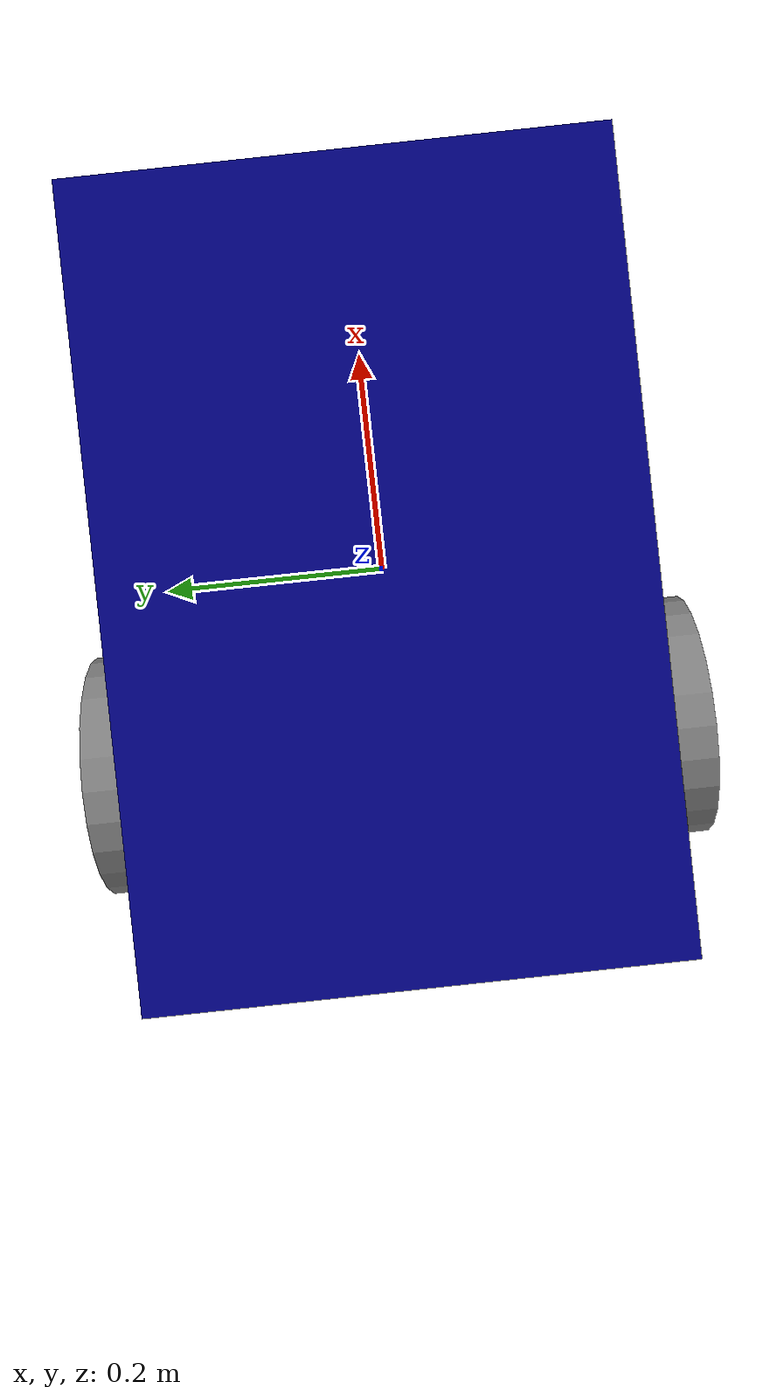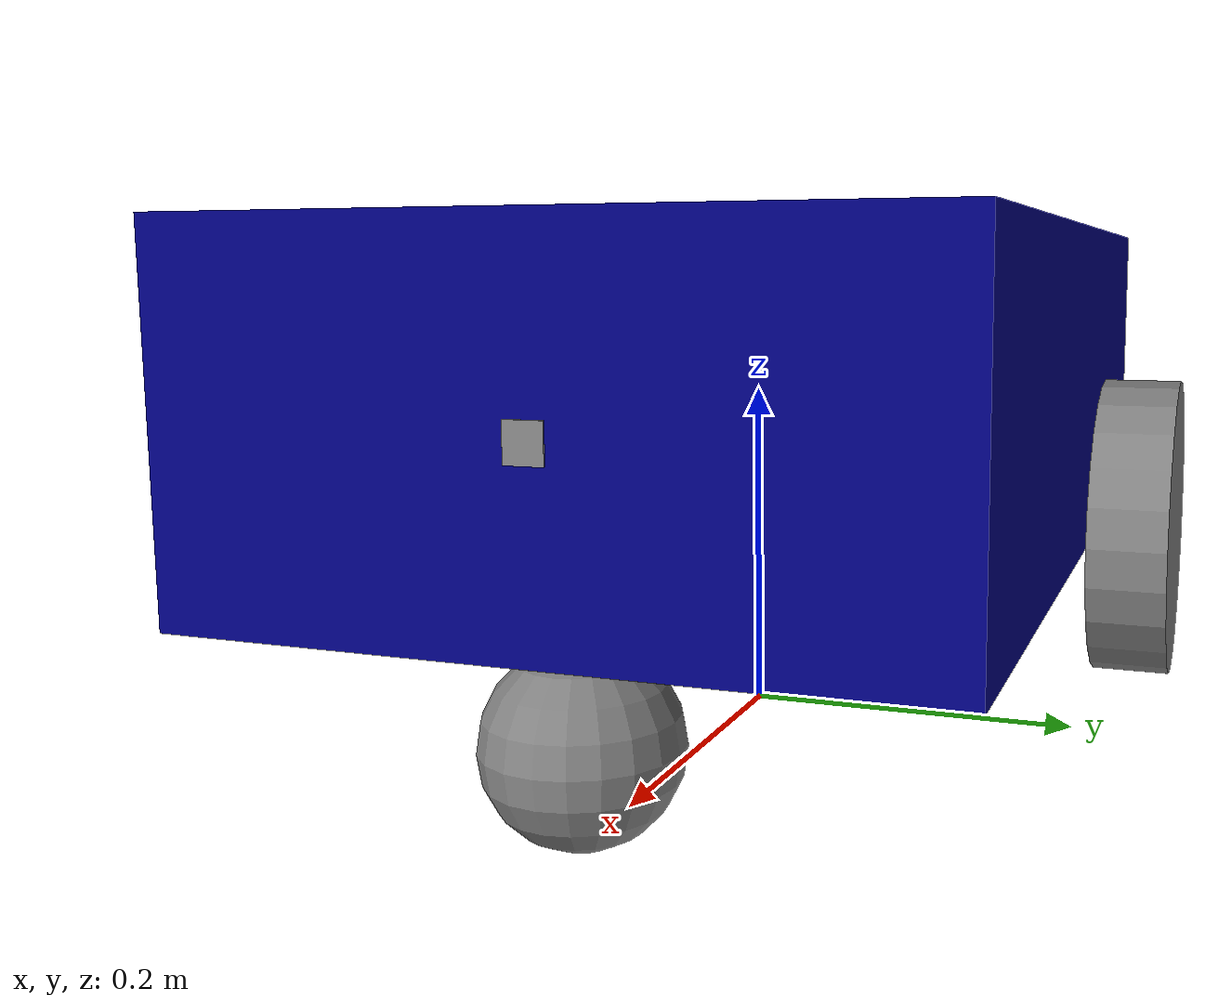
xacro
<?xml version="1.0"?>
<robot xmlns:xacro="http://www.ros.org/wiki/xacro">

    <xacro:property name="wheel_radius" value="0.1" />
    <xacro:property name="wheel_length" value="0.05"/>

    <xacro:macro name="tof_sensor" params="sensor_id">
        <link name="tof_sensor_${sensor_id}_link">
            <visual>
                <geometry>
                    <box size="0.002 0.02 0.02" />
                </geometry>
                <origin xyz="0 0 0" rpy="0 0 0" />
                <material name="grey" />
            </visual>
        </link>
    </xacro:macro>

    <xacro:macro name="wheel" params="prefix">
        <link name="${prefix}_wheel_link">
            <visual>
                <geometry>
                    <cylinder length="${wheel_length}" radius="${wheel_radius}" />
                </geometry>
                <origin xyz="0 0 0" rpy="${pi / 2} 0 0" />
                <material name="grey" />
            </visual>
        </link>
    </xacro:macro>

    <material name="blue">
        <color rgba="0 0 0.5 1" />
    </material>

    <material name="grey">
        <color rgba="0.5 0.5 0.5 1" />
    </material>

    <xacro:property name="base_length" value="0.6" />
    <xacro:property name="base_width" value="0.4" />
    <xacro:property name="base_height" value="0.2" />

    <link name="base_footprint" />

    <link name="base_link">
        <visual>
            <geometry>
                <box size="${base_length} ${base_width} ${base_height}" />
            </geometry>
            <origin xyz="0 0 0" rpy="0 0 0" />
            <material name="blue" />
        </visual>
    </link>

    <link name="caster_wheel_link">
        <visual>
            <geometry>
                <sphere radius="0.05" />
            </geometry>
            <origin xyz="0 0 0" rpy="0 0 0" />
            <material name="grey" />
        </visual>
    </link>

    <xacro:tof_sensor sensor_id="1"/>
    <xacro:wheel prefix="left" />
    <xacro:wheel prefix="right" />

    <joint name="base_joint" type="fixed">
        <parent link="base_footprint" />
        <child link="base_link" />
        <origin xyz="0 0 ${base_height}" rpy="0 0 0"/>
    </joint>

    <joint name="base_tof_sensor_1_joint" type="fixed">
        <parent link="base_link"/>
        <child link="tof_sensor_1_link" />
        <origin xyz="${base_length / 2} 0 0" rpy="0 0 0" />
    </joint>

    <joint name="base_left_wheel_joint" type="continuous">
        <parent link="base_link" />
        <child link="left_wheel_link" />
        <origin xyz="${-base_length / 4} ${-base_width / 2  - wheel_length / 2} ${-base_height / 2}" rpy="0 0 0" />
        <axis xyz="0 1 0"/>
    </joint>

    <joint name="base_right_wheel_joint" type="continuous">
        <parent link="base_link" />
        <child link="right_wheel_link" />
        <origin xyz="${-base_length / 4} ${(base_width / 2) + wheel_length / 2} ${-base_height / 2}" rpy="0 0 0" />
        <axis xyz="0 1 0"/>
    </joint>

    <joint name="base_caster_wheel_joint" type="fixed">
        <parent link="base_link" />
        <child link="caster_wheel_link" />
        <origin xyz="${base_length / 2 - 0.05} 0 ${-base_height / 2 -0.05}" rpy="0 0 0" />
    </joint>

</robot>
